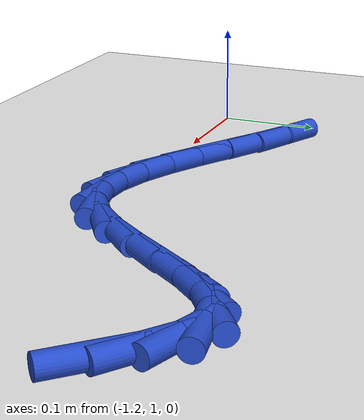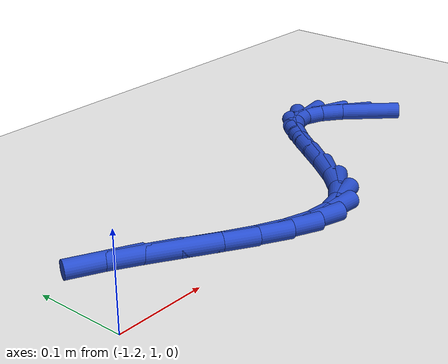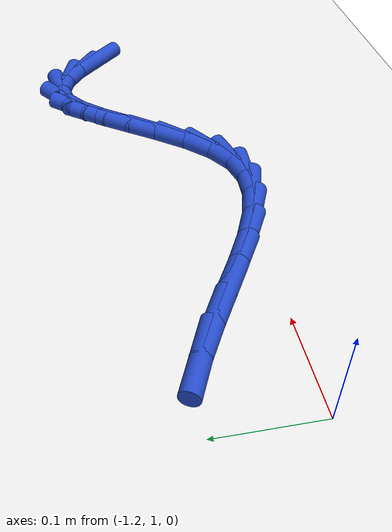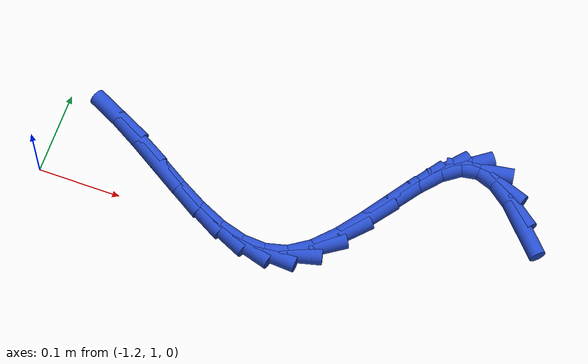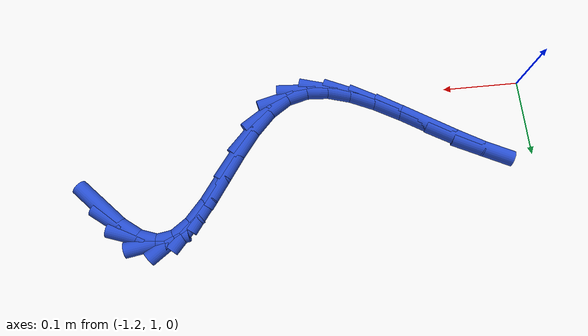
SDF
<sdf version="1.6">
 <world name="default">
  <model name="ground_plane">
   <static>1</static>
   <link name="link">
    <collision name="collision">
     <geometry><plane><normal>0 0 1</normal><size>100 100</size></plane></geometry>
     <surface><friction><ode><mu>100</mu><mu2>50</mu2></ode></friction></surface>
    </collision>
    <visual name="visual">
     <cast_shadows>0</cast_shadows>
     <geometry><plane><normal>0 0 1</normal><size>100 100</size></plane></geometry>
     <material>
      <script><uri>file://media/materials/scripts/gazebo.material</uri><name>Gazebo/WhiteGlow</name></script>
     </material>
    </visual>
   </link>
  </model>
  <model name="line">
   <link name="link_40">
    <pose>-0.645097439136437 1.119281682386315 0.01 0 1.57 -0.8119903719864504</pose>
    <collision name="collision">
     <geometry><cylinder><radius>0.01</radius><length>0.08</length></cylinder></geometry>
    </collision>
    <visual name="visual">
     <material>
      <script><name>Gazebo/Blue</name><uri>file://media/materials/scripts/gazebo.material</uri></script>
     </material>
     <geometry><cylinder><radius>0.01</radius><length>0.08</length></cylinder></geometry>
    </visual>
   </link>
   <link name="link_41">
    <pose>-0.6684761833941717 1.1439380885625081 0.01 0 1.57 -0.6459273108763169</pose>
    <collision name="collision">
     <geometry><cylinder><radius>0.01</radius><length>0.08</length></cylinder></geometry>
    </collision>
    <visual name="visual">
     <material>
      <script><name>Gazebo/Blue</name><uri>file://media/materials/scripts/gazebo.material</uri></script>
     </material>
     <geometry><cylinder><radius>0.01</radius><length>0.08</length></cylinder></geometry>
    </visual>
   </link>
   <link name="link_42">
    <pose>-0.6914391024796307 1.1612474878052133 0.01 0 1.57 -0.33929637585532013</pose>
    <collision name="collision">
     <geometry><cylinder><radius>0.01</radius><length>0.08</length></cylinder></geometry>
    </collision>
    <visual name="visual">
     <material>
      <script><name>Gazebo/Blue</name><uri>file://media/materials/scripts/gazebo.material</uri></script>
     </material>
     <geometry><cylinder><radius>0.01</radius><length>0.08</length></cylinder></geometry>
    </visual>
   </link>
   <link name="link_43">
    <pose>-0.7138215372738825 1.169147265350468 0.01 0 1.57 0.1624570294848196</pose>
    <collision name="collision">
     <geometry><cylinder><radius>0.01</radius><length>0.08</length></cylinder></geometry>
    </collision>
    <visual name="visual">
     <material>
      <script><name>Gazebo/Blue</name><uri>file://media/materials/scripts/gazebo.material</uri></script>
     </material>
     <geometry><cylinder><radius>0.01</radius><length>0.08</length></cylinder></geometry>
    </visual>
   </link>
   <link name="link_44">
    <pose>-0.7354615328666831 1.1656004379472886 0.01 0 1.57 0.6259853376983507</pose>
    <collision name="collision">
     <geometry><cylinder><radius>0.01</radius><length>0.08</length></cylinder></geometry>
    </collision>
    <visual name="visual">
     <material>
      <script><name>Gazebo/Blue</name><uri>file://media/materials/scripts/gazebo.material</uri></script>
     </material>
     <geometry><cylinder><radius>0.01</radius><length>0.08</length></cylinder></geometry>
    </visual>
   </link>
   <link name="link_45">
    <pose>-0.7563970010537291 1.1504644345964286 0.01 0 1.57 0.8553214016721044</pose>
    <collision name="collision">
     <geometry><cylinder><radius>0.01</radius><length>0.08</length></cylinder></geometry>
    </collision>
    <visual name="visual">
     <material>
      <script><name>Gazebo/Blue</name><uri>file://media/materials/scripts/gazebo.material</uri></script>
     </material>
     <geometry><cylinder><radius>0.01</radius><length>0.08</length></cylinder></geometry>
    </visual>
   </link>
   <link name="link_46">
    <pose>-0.7769994614839469 1.1267587457408323 0.01 0 1.57 0.9507750261588497</pose>
    <collision name="collision">
     <geometry><cylinder><radius>0.01</radius><length>0.08</length></cylinder></geometry>
    </collision>
    <visual name="visual">
     <material>
      <script><name>Gazebo/Blue</name><uri>file://media/materials/scripts/gazebo.material</uri></script>
     </material>
     <geometry><cylinder><radius>0.01</radius><length>0.08</length></cylinder></geometry>
    </visual>
   </link>
   <link name="link_47">
    <pose>-0.7976721072135649 1.0978030743604092 0.01 0 1.57 0.9704477656848276</pose>
    <collision name="collision">
     <geometry><cylinder><radius>0.01</radius><length>0.08</length></cylinder></geometry>
    </collision>
    <visual name="visual">
     <material>
      <script><name>Gazebo/Blue</name><uri>file://media/materials/scripts/gazebo.material</uri></script>
     </material>
     <geometry><cylinder><radius>0.01</radius><length>0.08</length></cylinder></geometry>
    </visual>
   </link>
   <link name="link_48">
    <pose>-0.8188181312988106 1.0669171234350685 0.01 0 1.57 0.9294641471270434</pose>
    <collision name="collision">
     <geometry><cylinder><radius>0.01</radius><length>0.08</length></cylinder></geometry>
    </collision>
    <visual name="visual">
     <material>
      <script><name>Gazebo/Blue</name><uri>file://media/materials/scripts/gazebo.material</uri></script>
     </material>
     <geometry><cylinder><radius>0.01</radius><length>0.08</length></cylinder></geometry>
    </visual>
   </link>
   <link name="link_49">
    <pose>-0.8408407267959116 1.0374205959447187 0.01 0 1.57 0.8162689620255424</pose>
    <collision name="collision">
     <geometry><cylinder><radius>0.01</radius><length>0.08</length></cylinder></geometry>
    </collision>
    <visual name="visual">
     <material>
      <script><name>Gazebo/Blue</name><uri>file://media/materials/scripts/gazebo.material</uri></script>
     </material>
     <geometry><cylinder><radius>0.01</radius><length>0.08</length></cylinder></geometry>
    </visual>
   </link>
   <link name="link_50">
    <pose>-0.8641430867610961 1.0126331948692684 0.01 0 1.57 0.5910714861182953</pose>
    <collision name="collision">
     <geometry><cylinder><radius>0.01</radius><length>0.08</length></cylinder></geometry>
    </collision>
    <visual name="visual">
     <material>
      <script><name>Gazebo/Blue</name><uri>file://media/materials/scripts/gazebo.material</uri></script>
     </material>
     <geometry><cylinder><radius>0.01</radius><length>0.08</length></cylinder></geometry>
    </visual>
   </link>
   <link name="link_51">
    <pose>-0.8891272246671217 0.9958661250860087 0.01 0 1.57 0.2512812403217004</pose>
    <collision name="collision">
     <geometry><cylinder><radius>0.01</radius><length>0.08</length></cylinder></geometry>
    </collision>
    <visual name="visual">
     <material>
      <script><name>Gazebo/Blue</name><uri>file://media/materials/scripts/gazebo.material</uri></script>
     </material>
     <geometry><cylinder><radius>0.01</radius><length>0.08</length></cylinder></geometry>
    </visual>
   </link>
   <link name="link_52">
    <pose>-0.9159923673978942 0.9889696509914665 0.01 0 1.57 -0.06018092588847776</pose>
    <collision name="collision">
     <geometry><cylinder><radius>0.01</radius><length>0.08</length></cylinder></geometry>
    </collision>
    <visual name="visual">
     <material>
      <script><name>Gazebo/Blue</name><uri>file://media/materials/scripts/gazebo.material</uri></script>
     </material>
     <geometry><cylinder><radius>0.01</radius><length>0.08</length></cylinder></geometry>
    </visual>
   </link>
   <link name="link_53">
    <pose>-0.944506570252369 0.9906877367767344 0.01 0 1.57 -0.28272036968240244</pose>
    <collision name="collision">
     <geometry><cylinder><radius>0.01</radius><length>0.08</length></cylinder></geometry>
    </collision>
    <visual name="visual">
     <material>
      <script><name>Gazebo/Blue</name><uri>file://media/materials/scripts/gazebo.material</uri></script>
     </material>
     <geometry><cylinder><radius>0.01</radius><length>0.08</length></cylinder></geometry>
    </visual>
   </link>
   <link name="link_54">
    <pose>-0.9743827087020915 0.9993668132257942 0.01 0 1.57 -0.42442650674620214</pose>
    <collision name="collision">
     <geometry><cylinder><radius>0.01</radius><length>0.08</length></cylinder></geometry>
    </collision>
    <visual name="visual">
     <material>
      <script><name>Gazebo/Blue</name><uri>file://media/materials/scripts/gazebo.material</uri></script>
     </material>
     <geometry><cylinder><radius>0.01</radius><length>0.08</length></cylinder></geometry>
    </visual>
   </link>
   <link name="link_55">
    <pose>-1.0053336582186085 1.0133533111226285 0.01 0 1.57 -0.5072856676408173</pose>
    <collision name="collision">
     <geometry><cylinder><radius>0.01</radius><length>0.08</length></cylinder></geometry>
    </collision>
    <visual name="visual">
     <material>
      <script><name>Gazebo/Blue</name><uri>file://media/materials/scripts/gazebo.material</uri></script>
     </material>
     <geometry><cylinder><radius>0.01</radius><length>0.08</length></cylinder></geometry>
    </visual>
   </link>
   <link name="link_56">
    <pose>-1.0370722942734665 1.0309936612512192 0.01 0 1.57 -0.5471683791298421</pose>
    <collision name="collision">
     <geometry><cylinder><radius>0.01</radius><length>0.08</length></cylinder></geometry>
    </collision>
    <visual name="visual">
     <material>
      <script><name>Gazebo/Blue</name><uri>file://media/materials/scripts/gazebo.material</uri></script>
     </material>
     <geometry><cylinder><radius>0.01</radius><length>0.08</length></cylinder></geometry>
    </visual>
   </link>
   <link name="link_57">
    <pose>-1.0693114923382117 1.0506342943955493 0.01 0 1.57 -0.5520235492959567</pose>
    <collision name="collision">
     <geometry><cylinder><radius>0.01</radius><length>0.08</length></cylinder></geometry>
    </collision>
    <visual name="visual">
     <material>
      <script><name>Gazebo/Blue</name><uri>file://media/materials/scripts/gazebo.material</uri></script>
     </material>
     <geometry><cylinder><radius>0.01</radius><length>0.08</length></cylinder></geometry>
    </visual>
   </link>
   <link name="link_58">
    <pose>-1.1017641278843893 1.0706216413395995 0.01 0 1.57 -0.5232859440363107</pose>
    <collision name="collision">
     <geometry><cylinder><radius>0.01</radius><length>0.08</length></cylinder></geometry>
    </collision>
    <visual name="visual">
     <material>
      <script><name>Gazebo/Blue</name><uri>file://media/materials/scripts/gazebo.material</uri></script>
     </material>
     <geometry><cylinder><radius>0.01</radius><length>0.08</length></cylinder></geometry>
    </visual>
   </link>
   <link name="link_59">
    <pose>-1.1341430763835476 1.0893021328673538 0.01 0 1.57 -0.4564006238870125</pose>
    <collision name="collision">
     <geometry><cylinder><radius>0.01</radius><length>0.08</length></cylinder></geometry>
    </collision>
    <visual name="visual">
     <material>
      <script><name>Gazebo/Blue</name><uri>file://media/materials/scripts/gazebo.material</uri></script>
     </material>
     <geometry><cylinder><radius>0.01</radius><length>0.08</length></cylinder></geometry>
    </visual>
   </link>
  </model>
 </world>
</sdf>
